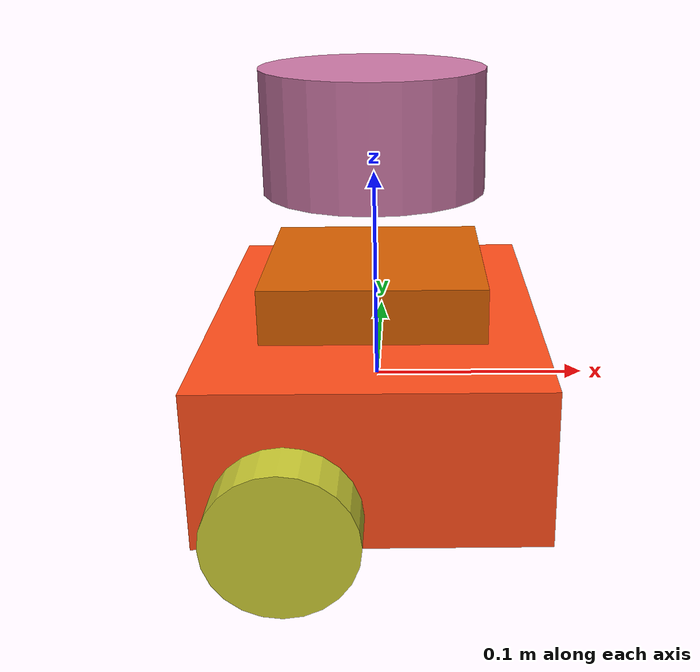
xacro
<?xml version="1.0"?>
<robot xmlns:xacro="http://www.ros.org/wiki/xacro">

  <material name="white">
    <color rgba="1 1 1 1"/>
  </material>

  <material name="orange">
    <color rgba="1 0.3 0.1 1"/>
  </material>

  <material name="yellow">
    <color rgba="0.8 0.8 0.2 1"/>
  </material>

  <material name="black">
    <color rgba="0 0 0 1"/>
  </material>

  <!-- inertia constants, nav2 reference -->
  <xacro:macro name="box_inertia" params="m w h d">
    <inertial>
      <origin xyz="0 0 0" rpy="${pi/2} 0 ${pi/2}"/>
      <mass value="${m}"/>
      <inertia ixx="${(m/12) * (h*h + d*d)}" ixy="0.0" ixz="0.0" iyy="${(m/12) * (w*w + d*d)}" iyz="0.0" izz="${(m/12) * (w*w + h*h)}"/>
      <!-- in inertia is the integral of the object in the axis * angular velocity, so we can transform the vectors in inertia moment -->
    </inertial>
  </xacro:macro>

  <xacro:macro name="cylinder_inertia" params="m r h">
    <inertial>
      <origin xyz="0 0 0" rpy="${pi/2} 0 ${pi/2}"/>
      <mass value="${m}"/>
      <inertia ixx="${(m/12) *(3*r*r + h*h)}" ixy = "0" ixz = "0" iyy="${(m/12) * (3*r*r + h*h)}" iyz = "0" izz="${(m/2) * (r*r)}"/>
    </inertial>
  </xacro:macro>

  <xacro:macro name="sphere_inertia" params="m r">
    <inertial>
      <origin xyz="0 0 0" rpy="${pi/2} 0 ${pi/2}"/>
      <mass value="${m}"/>
      <inertia ixx="${(2/5) * m * (r*r)}" ixy="0" ixz="0" iyy="${(2/5) * m * (r*r)}" iyz="0" izz="${(2/5) * m * (r*r)}"/>
    </inertial>
  </xacro:macro>

    <!-- Define robot constants -->
  <xacro:property name="base_width" value="0.2"/>
  <xacro:property name="base_length" value="0.15"/>
  <xacro:property name="base_height" value="0.07"/>

  <xacro:property name="wheel_radius" value="0.032"/>
  <xacro:property name="wheel_width" value="0.026"/>
  <xacro:property name="wheel_ygap" value="0.01"/>
  <xacro:property name="wheel_zoff" value="0.02"/>
  <xacro:property name="wheel_xoff" value="0.035"/>

  <xacro:property name="lidar_radius" value = "0.05"/>
  <xacro:property name="lidar_width" value = "0.025"/>

  <xacro:property name="caster_xoff" value="0.03"/>

  <!-- Robot Base -->

  <link name="base_link">
    <visual>
      <geometry>
        <box size="${base_length} ${base_width} ${base_height}"/>
      </geometry>
      <material name="orange"/>
    </visual>

     <collision>
      <geometry>
        <box size="${base_length} ${base_width} ${base_height}"/>
      </geometry>
    </collision>

  </link>

    <!-- Robot Footprint -->
  <link name="base_footprint">
    <xacro:box_inertia m="15" w="${base_width}" d="${base_length}" h="${base_height}"/>
  </link>
  <!-- for some reason urdf doesnt like physics in base_link -->
    <joint name="base_joint" type="fixed">
      <parent link="base_link"/>
      <child link="base_footprint"/>
      <origin xyz="0.0 0.0 ${-(wheel_radius+wheel_zoff)}" rpy="0 0 0"/>
    </joint>

    <!-- Wheels -->
  <xacro:macro name="wheel" params="prefix x_reflect y_reflect">
    <link name="${prefix}_link">
      <visual>
        <origin xyz="0 0 0" rpy="${pi/2} 0 0"/>
        <geometry>
            <cylinder radius="${wheel_radius}" length="${wheel_width}"/>
        </geometry>

	<material name="yellow"/>
      </visual>

      <collision>
        <origin xyz="0 0 0" rpy="${pi/2} 0 0"/>
        <geometry>
          <cylinder radius="${wheel_radius}" length="${wheel_width}"/>
        </geometry>
      </collision>

      <xacro:cylinder_inertia m="0.5" r="${wheel_radius}" h="${wheel_width}"/>

    </link>

    <joint name="${prefix}_joint" type="continuous">
      <parent link="base_link"/>
      <child link="${prefix}_link"/>
      <origin xyz="${x_reflect*wheel_xoff} ${y_reflect*(base_width/2+wheel_ygap)} ${-wheel_zoff}" rpy="0 0 0"/>
      <axis xyz="0 1 0"/>
    </joint>
  </xacro:macro>

  <xacro:wheel prefix="drivewhl_l" x_reflect="-1" y_reflect="1"/>

  <xacro:wheel prefix="drivewhl_r" x_reflect="-1" y_reflect="-1"/>

    <!-- Caster Wheel -->
  <link name="front_caster">
    <visual>
      <geometry>
        <sphere radius="${(wheel_radius+wheel_zoff-(base_height/2))}"/>
      </geometry>
      <material name="white"/>
    </visual>

    <collision>
      <origin xyz="0 0 0" rpy="0 0 0"/>
      <geometry>
        <sphere radius="${(wheel_radius+wheel_zoff-(base_height/2))}"/>
      </geometry>
    </collision>

    <xacro:sphere_inertia m="0.5" r="${(wheel_radius+wheel_zoff-(base_height/2))}"/>
  </link>

  <joint name="caster_joint" type="fixed">
    <parent link="base_link"/>
    <child link="front_caster"/>
    <origin xyz="${caster_xoff} 0.0 ${-(base_height/2)}" rpy="0 0 0"/>
  </joint>

    <link name="imu_link">
    <visual>
      <geometry>
        <box size="0.1 0.1 0.1"/>
      </geometry>
    </visual>

    <collision>
      <geometry>
        <box size="0.1 0.1 0.1"/>
      </geometry>
    </collision>

    <xacro:box_inertia m="0.1" w="0.1" d="0.1" h="0.1"/>
  </link>

  <joint name="imu_joint" type="fixed">
    <parent link="base_link"/>
    <child link="imu_link"/>
    <origin xyz="0 0 0.01"/>
  </joint>

  <link name="lidar_link">
    <inertial>
      <origin xyz="0 0 0" rpy="0 0 0"/>
      <mass value="0.125"/>
      <inertia ixx="0.001" ixy="0" ixz="0" iyy="0.001" iyz="0" izz="0.001" />
    </inertial>

    <collision>
      <origin xyz="0 0 0" rpy="0 0 0"/>
      <geometry>
        <cylinder radius="0.0508" length="0.055"/>
      </geometry>
    </collision>

    <visual>
      <origin xyz="0 0 0" rpy="0 0 0"/>
      <geometry>
        <cylinder radius="0.0508" length="0.055"/>
      </geometry>
    </visual>
  </link>

  <joint name="lidar_joint" type="fixed">
    <parent link="base_link"/>
    <child link="lidar_link"/>
    <origin xyz="0 0 0.12" rpy="0 0 0"/>
  </joint>

</robot>
